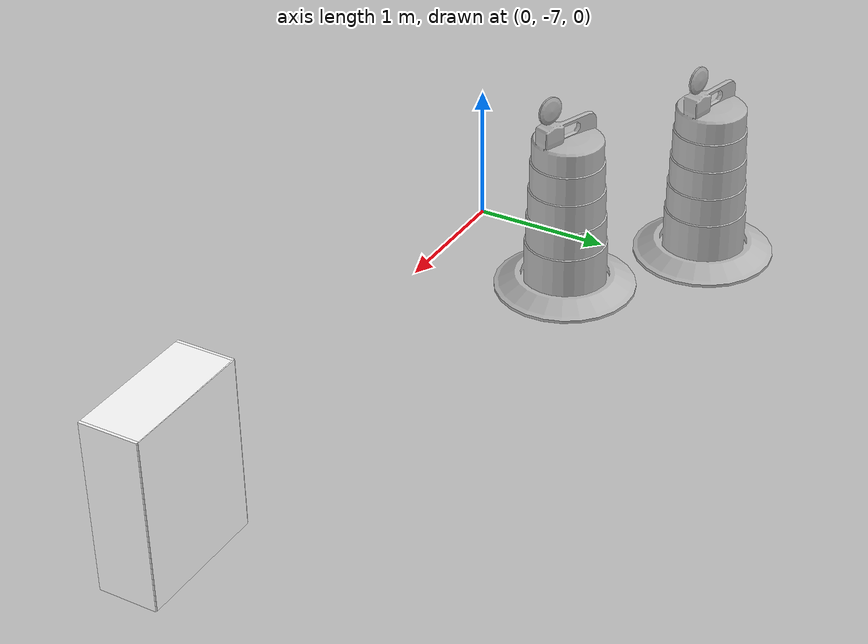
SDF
<sdf version="1.7">
 <world name="default">
  <model name="Construction Barrel">
   <link name="link">
    <inertial>
     <pose>0 0 0.4 0 -0 0</pose>
     <mass>500</mass>
     <inertia><ixx>51.2096</ixx><iyy>51.2096</iyy><izz>25</izz><ixy>0</ixy><ixz>0</ixz><iyz>0</iyz></inertia>
    </inertial>
    <collision name="collision">
     <pose>0 0 0.32 0 0 0</pose>
     <geometry><cylinder><radius>0.16</radius><length>0.64</length></cylinder></geometry>
    </collision>
    <visual name="visual">
     <geometry><mesh><uri>model://construction_barrel/meshes/construction_barrel.dae</uri></mesh></geometry>
    </visual>
   </link>
   <pose>-0.274787 -5.3139 0.00999 1e-06 -0 -0.237848</pose>
  </model>
  <model name="Construction Barrel_clone">
   <link name="link">
    <inertial>
     <pose>0 0 0.4 0 -0 0</pose>
     <mass>500</mass>
     <inertia><ixx>51.2096</ixx><iyy>51.2096</iyy><izz>25</izz><ixy>0</ixy><ixz>0</ixz><iyz>0</iyz></inertia>
    </inertial>
    <collision name="collision">
     <pose>0 0 0.32 0 0 0</pose>
     <geometry><cylinder><radius>0.16</radius><length>0.64</length></cylinder></geometry>
    </collision>
    <visual name="visual">
     <geometry><mesh><uri>model://construction_barrel/meshes/construction_barrel.dae</uri></mesh></geometry>
    </visual>
   </link>
   <pose>0.623823 -5.9827 0.009999 3e-06 -8e-06 -0.35048</pose>
  </model>
  <model name="bookshelf">
   <static>1</static>
   <link name="link">
    <inertial><mass>1</mass></inertial>
    <collision name="back">
     <pose>0 0.005 0.6 0 -0 0</pose>
     <geometry><box><size>0.9 0.01 1.2</size></box></geometry>
    </collision>
    <visual name="visual1">
     <pose>0 0.005 0.6 0 -0 0</pose>
     <geometry><box><size>0.9 0.01 1.2</size></box></geometry>
     <material>
      <ambient>1 1 1 1</ambient>
      <diffuse>1 1 1 1</diffuse>
      <specular>0.08 0.08 0.08 1</specular>
      <emissive>0 0 0 1</emissive>
      <pbr>
       <metal>
        <albedo_map>model://among_us_world/materials/textures/legacy_wood.jpg</albedo_map>
        <roughness>0.62</roughness>
        <metalness>0</metalness>
       </metal>
      </pbr>
     </material>
    </visual>
    <collision name="left_side">
     <pose>0.45 -0.195 0.6 0 -0 0</pose>
     <geometry><box><size>0.02 0.4 1.2</size></box></geometry>
    </collision>
    <visual name="visual2">
     <pose>0.45 -0.195 0.6 0 -0 0</pose>
     <geometry><box><size>0.02 0.4 1.2</size></box></geometry>
     <material>
      <ambient>1 1 1 1</ambient>
      <diffuse>1 1 1 1</diffuse>
      <specular>0.08 0.08 0.08 1</specular>
      <emissive>0 0 0 1</emissive>
      <pbr>
       <metal>
        <albedo_map>model://among_us_world/materials/textures/legacy_wood.jpg</albedo_map>
        <roughness>0.62</roughness>
        <metalness>0</metalness>
       </metal>
      </pbr>
     </material>
    </visual>
    <collision name="right_side">
     <pose>-0.45 -0.195 0.6 0 -0 0</pose>
     <geometry><box><size>0.02 0.4 1.2</size></box></geometry>
    </collision>
    <visual name="visual3">
     <pose>-0.45 -0.195 0.6 0 -0 0</pose>
     <geometry><box><size>0.02 0.4 1.2</size></box></geometry>
     <material>
      <ambient>1 1 1 1</ambient>
      <diffuse>1 1 1 1</diffuse>
      <specular>0.08 0.08 0.08 1</specular>
      <emissive>0 0 0 1</emissive>
      <pbr>
       <metal>
        <albedo_map>model://among_us_world/materials/textures/legacy_wood.jpg</albedo_map>
        <roughness>0.62</roughness>
        <metalness>0</metalness>
       </metal>
      </pbr>
     </material>
    </visual>
    <collision name="bottom">
     <pose>0 -0.195 0.03 0 -0 0</pose>
     <geometry><box><size>0.88 0.4 0.06</size></box></geometry>
    </collision>
    <visual name="visual4">
     <pose>0 -0.195 0.03 0 -0 0</pose>
     <geometry><box><size>0.88 0.4 0.06</size></box></geometry>
     <material>
      <ambient>1 1 1 1</ambient>
      <diffuse>1 1 1 1</diffuse>
      <specular>0.08 0.08 0.08 1</specular>
      <emissive>0 0 0 1</emissive>
      <pbr>
       <metal>
        <albedo_map>model://among_us_world/materials/textures/legacy_wood.jpg</albedo_map>
        <roughness>0.62</roughness>
        <metalness>0</metalness>
       </metal>
      </pbr>
     </material>
    </visual>
    <collision name="top">
     <pose>0 -0.195 1.19 0 -0 0</pose>
     <geometry><box><size>0.88 0.4 0.02</size></box></geometry>
    </collision>
    <visual name="visual5">
     <pose>0 -0.195 1.19 0 -0 0</pose>
     <geometry><box><size>0.88 0.4 0.02</size></box></geometry>
     <material>
      <ambient>1 1 1 1</ambient>
      <diffuse>1 1 1 1</diffuse>
      <specular>0.08 0.08 0.08 1</specular>
      <emissive>0 0 0 1</emissive>
      <pbr>
       <metal>
        <albedo_map>model://among_us_world/materials/textures/legacy_wood.jpg</albedo_map>
        <roughness>0.62</roughness>
        <metalness>0</metalness>
       </metal>
      </pbr>
     </material>
    </visual>
    <collision name="low_shelf">
     <pose>0 -0.195 0.43 0 -0 0</pose>
     <geometry><box><size>0.88 0.4 0.02</size></box></geometry>
    </collision>
    <visual name="visual6">
     <pose>0 -0.195 0.43 0 -0 0</pose>
     <geometry><box><size>0.88 0.4 0.02</size></box></geometry>
     <material>
      <ambient>1 1 1 1</ambient>
      <diffuse>1 1 1 1</diffuse>
      <specular>0.08 0.08 0.08 1</specular>
      <emissive>0 0 0 1</emissive>
      <pbr>
       <metal>
        <albedo_map>model://among_us_world/materials/textures/legacy_wood.jpg</albedo_map>
        <roughness>0.62</roughness>
        <metalness>0</metalness>
       </metal>
      </pbr>
     </material>
    </visual>
    <collision name="high_shelf">
     <pose>0 -0.195 0.8 0 -0 0</pose>
     <geometry><box><size>0.88 0.4 0.02</size></box></geometry>
    </collision>
    <visual name="visual7">
     <pose>0 -0.195 0.8 0 -0 0</pose>
     <geometry><box><size>0.88 0.4 0.02</size></box></geometry>
     <material>
      <ambient>1 1 1 1</ambient>
      <diffuse>1 1 1 1</diffuse>
      <specular>0.08 0.08 0.08 1</specular>
      <emissive>0 0 0 1</emissive>
      <pbr>
       <metal>
        <albedo_map>model://among_us_world/materials/textures/legacy_wood.jpg</albedo_map>
        <roughness>0.62</roughness>
        <metalness>0</metalness>
       </metal>
      </pbr>
     </material>
    </visual>
   </link>
   <pose>4.37057 -6.44632 0 0 -0 0</pose>
  </model>
 </world>
</sdf>
